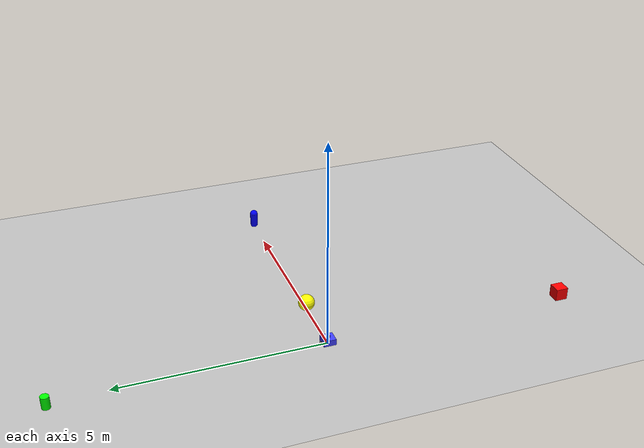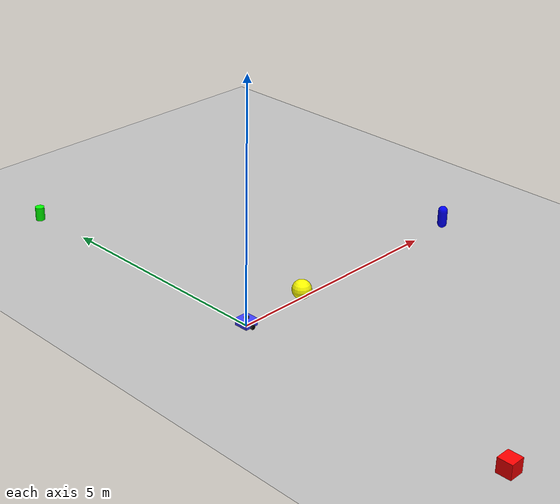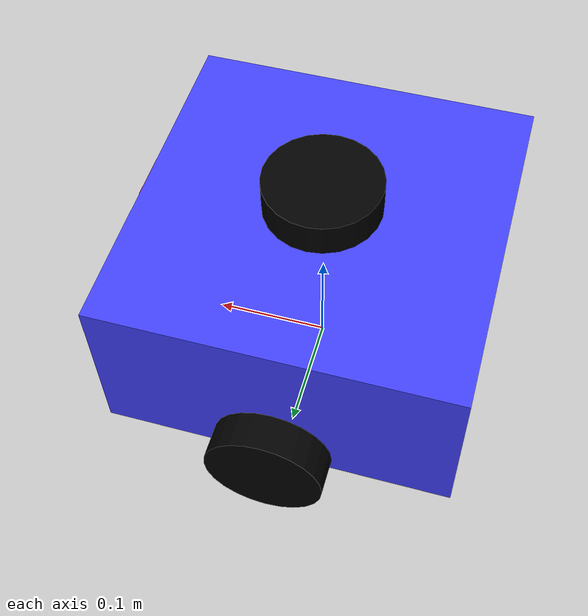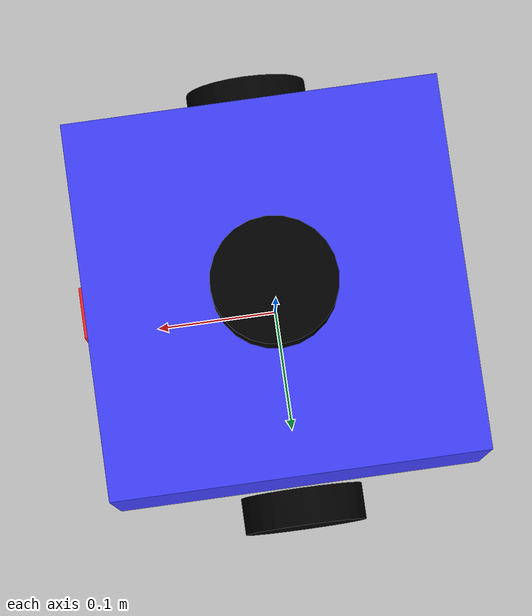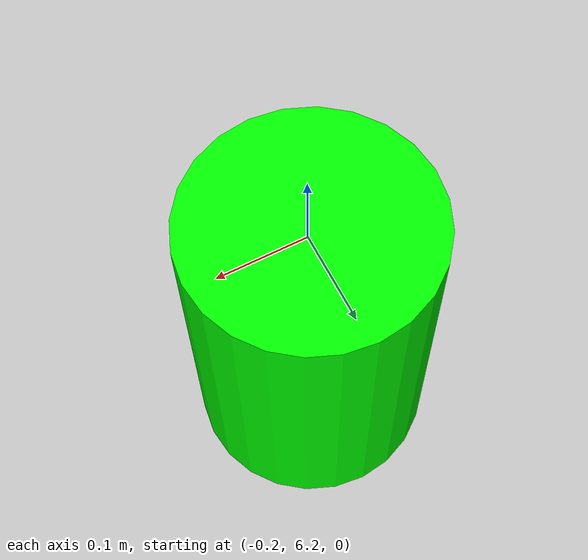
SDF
<sdf version='1.10'>
  <world name='colored_shapes'>
    <physics name='1ms' type='ignored'>
      <max_step_size>0.001</max_step_size>
      <real_time_factor>1</real_time_factor>
      <real_time_update_rate>1000</real_time_update_rate>
    </physics>
    <plugin name='gz::sim::systems::Physics' filename='gz-sim-physics-system'/>
    <plugin name='gz::sim::systems::UserCommands' filename='gz-sim-user-commands-system'/>
    <plugin name='gz::sim::systems::SceneBroadcaster' filename='gz-sim-scene-broadcaster-system'/>
    <gravity>0 0 -9.8000000000000007</gravity>
    <magnetic_field>5.5644999999999998e-06 2.2875799999999999e-05 -4.2388400000000002e-05</magnetic_field>
    <atmosphere type='adiabatic'/>
    <scene>
      <ambient>0.400000006 0.400000006 0.400000006 1</ambient>
      <background>0.699999988 0.699999988 0.699999988 1</background>
      <shadows>true</shadows>
    </scene>
    <model name='ground_plane'>
      <static>true</static>
      <link name='link'>
        <collision name='collision'>
          <geometry>
            <plane>
              <normal>0 0 1</normal>
              <size>100 100</size>
            </plane>
          </geometry>
          <surface>
            <friction>
              <ode/>
            </friction>
            <bounce/>
            <contact/>
          </surface>
        </collision>
        <visual name='visual'>
          <geometry>
            <plane>
              <normal>0 0 1</normal>
              <size>100 100</size>
            </plane>
          </geometry>
          <material>
            <ambient>0.75 0.75 0.75 1</ambient>
            <diffuse>0.75 0.75 0.75 1</diffuse>
          </material>
        </visual>
        <pose>0 0 0 0 0 0</pose>
        <inertial>
          <pose>0 0 0 0 0 0</pose>
          <mass>1</mass>
          <inertia>
            <ixx>1</ixx>
            <ixy>0</ixy>
            <ixz>0</ixz>
            <iyy>1</iyy>
            <iyz>0</iyz>
            <izz>1</izz>
          </inertia>
        </inertial>
        <enable_wind>false</enable_wind>
      </link>
      <pose>0 0 0 0 0 0</pose>
      <self_collide>false</self_collide>
    </model>
    <model name='target_box'>
      <pose>-0.094302400946617126 -5.9963607788085938 0.14999900272905953 5.4231532227531498e-20 8.6218849733862477e-20 -6.5828572647410327e-22</pose>
      <link name='link'>
        <collision name='collision'>
          <geometry>
            <box>
              <size>0.29999999999999999 0.29999999999999999 0.29999999999999999</size>
            </box>
          </geometry>
          <surface>
            <friction>
              <ode/>
            </friction>
            <bounce/>
            <contact/>
          </surface>
        </collision>
        <visual name='visual'>
          <geometry>
            <box>
              <size>0.29999999999999999 0.29999999999999999 0.29999999999999999</size>
            </box>
          </geometry>
          <material>
            <ambient>1 0 0 1</ambient>
            <diffuse>1 0 0 1</diffuse>
            <specular>0.200000003 0.200000003 0.200000003 1</specular>
          </material>
        </visual>
        <pose>0 0 0 0 0 0</pose>
        <inertial>
          <pose>0 0 0 0 0 0</pose>
          <mass>1</mass>
          <inertia>
            <ixx>1</ixx>
            <ixy>0</ixy>
            <ixz>0</ixz>
            <iyy>1</iyy>
            <iyz>0</iyz>
            <izz>1</izz>
          </inertia>
        </inertial>
        <enable_wind>false</enable_wind>
      </link>
      <static>false</static>
      <self_collide>false</self_collide>
    </model>
    <model name='decoy_sphere'>
      <pose>1.5 0 0.2 0 0 0</pose>
      <link name='link'>
        <collision name='collision'>
          <geometry>
            <sphere>
              <radius>0.20000000000000001</radius>
            </sphere>
          </geometry>
          <surface>
            <friction>
              <ode/>
            </friction>
            <bounce/>
            <contact/>
          </surface>
        </collision>
        <visual name='visual'>
          <geometry>
            <sphere>
              <radius>0.20000000000000001</radius>
            </sphere>
          </geometry>
          <material>
            <ambient>1 1 0 1</ambient>
            <diffuse>1 1 0 1</diffuse>
            <specular>0.200000003 0.200000003 0.200000003 1</specular>
          </material>
        </visual>
        <pose>0 0 0 0 0 0</pose>
        <inertial>
          <pose>0 0 0 0 0 0</pose>
          <mass>1</mass>
          <inertia>
            <ixx>1</ixx>
            <ixy>0</ixy>
            <ixz>0</ixz>
            <iyy>1</iyy>
            <iyz>0</iyz>
            <izz>1</izz>
          </inertia>
        </inertial>
        <enable_wind>false</enable_wind>
      </link>
      <static>false</static>
      <self_collide>false</self_collide>
    </model>
    <model name='decoy_capsule'>
      <pose>5.8956255912780762 0 0.24999999990200097 0 0 0</pose>
      <link name='link'>
        <collision name='collision'>
          <geometry>
            <capsule>
              <radius>0.10000000000000001</radius>
              <length>0.29999999999999999</length>
            </capsule>
          </geometry>
          <surface>
            <friction>
              <ode/>
            </friction>
            <bounce/>
            <contact/>
          </surface>
        </collision>
        <visual name='visual'>
          <geometry>
            <capsule>
              <radius>0.10000000000000001</radius>
              <length>0.29999999999999999</length>
            </capsule>
          </geometry>
          <material>
            <ambient>0 0 1 1</ambient>
            <diffuse>0 0 1 1</diffuse>
            <specular>0.200000003 0.200000003 0.200000003 1</specular>
          </material>
        </visual>
        <pose>0 0 0 0 0 0</pose>
        <inertial>
          <pose>0 0 0 0 0 0</pose>
          <mass>1</mass>
          <inertia>
            <ixx>1</ixx>
            <ixy>0</ixy>
            <ixz>0</ixz>
            <iyy>1</iyy>
            <iyz>0</iyz>
            <izz>1</izz>
          </inertia>
        </inertial>
        <enable_wind>false</enable_wind>
      </link>
      <static>false</static>
      <self_collide>false</self_collide>
    </model>
    <model name='decoy_cylinder'>
      <pose>-0.13213895261287689 6.3388900756835938 0.14999900274228203 -9.2246248639928911e-19 6.051308253543817e-19 -3.9319038046190713e-24</pose>
      <link name='link'>
        <collision name='collision'>
          <geometry>
            <cylinder>
              <radius>0.10000000000000001</radius>
              <length>0.29999999999999999</length>
            </cylinder>
          </geometry>
          <surface>
            <friction>
              <ode/>
            </friction>
            <bounce/>
            <contact/>
          </surface>
        </collision>
        <visual name='visual'>
          <geometry>
            <cylinder>
              <radius>0.10000000000000001</radius>
              <length>0.29999999999999999</length>
            </cylinder>
          </geometry>
          <material>
            <ambient>0 1 0 1</ambient>
            <diffuse>0 1 0 1</diffuse>
            <specular>0.200000003 0.200000003 0.200000003 1</specular>
          </material>
        </visual>
        <pose>0 0 0 0 0 0</pose>
        <inertial>
          <pose>0 0 0 0 0 0</pose>
          <mass>1</mass>
          <inertia>
            <ixx>1</ixx>
            <ixy>0</ixy>
            <ixz>0</ixz>
            <iyy>1</iyy>
            <iyz>0</iyz>
            <izz>1</izz>
          </inertia>
        </inertial>
        <enable_wind>false</enable_wind>
      </link>
      <static>false</static>
      <self_collide>false</self_collide>
    </model>
    <model name='2wheeled_robot'>
      <link name='base_footprint'>
        <inertial>
          <pose>2.203613926840055e-05 0 0.12652783898927569 0 0 0</pose>
          <mass>6.8070000000000013</mass>
          <inertia>
            <ixx>0.042246756307844843</ixx>
            <ixy>0</ixy>
            <ixz>-3.52082415160848e-06</ixz>
            <iyy>0.085406753002423952</iyy>
            <iyz>0</iyz>
            <izz>0.095900113361245751</izz>
          </inertia>
        </inertial>
        <collision name='base_footprint_fixed_joint_lump__base_link_collision'>
          <pose>0 0 0.10000000000000001 0 0 0</pose>
          <geometry>
            <box>
              <size>0.29999999999999999 0.29999999999999999 0.14999999999999999</size>
            </box>
          </geometry>
          <surface>
            <friction>
              <ode/>
            </friction>
            <bounce/>
            <contact/>
          </surface>
        </collision>
        <collision name='base_footprint_fixed_joint_lump__back_caster_wheel_link_collision_1'>
          <pose>-0.10000000000000001 0 0.050000000000000003 1.5700000000000001 0 0</pose>
          <geometry>
            <sphere>
              <radius>0.049500000000000002</radius>
            </sphere>
          </geometry>
          <surface>
            <contact>
              <ode>
                <kp>100000</kp>
                <kd>1000</kd>
                <max_vel>0.10000000000000001</max_vel>
                <min_depth>0.001</min_depth>
              </ode>
            </contact>
            <friction>
              <ode>
                <mu>0.01</mu>
                <mu2>0.01</mu2>
                <fdir1>1 0 0</fdir1>
              </ode>
            </friction>
            <bounce/>
          </surface>
        </collision>
        <collision name='base_footprint_fixed_joint_lump__camera_link_collision_2'>
          <pose>0.14999999999999999 0 0.14999999999999999 0 1.5707963267948966 0</pose>
          <geometry>
            <box>
              <size>0.040000000000000001 0.040000000000000001 0.0050000000000000001</size>
            </box>
          </geometry>
          <surface>
            <contact>
              <ode/>
            </contact>
            <friction>
              <ode/>
            </friction>
            <bounce/>
          </surface>
        </collision>
        <collision name='base_footprint_fixed_joint_lump__front_caster_wheel_link_collision_3'>
          <pose>0.10000000000000001 0 0.050000000000000003 1.5700000000000001 0 0</pose>
          <geometry>
            <sphere>
              <radius>0.049500000000000002</radius>
            </sphere>
          </geometry>
          <surface>
            <contact>
              <ode>
                <kp>100000</kp>
                <kd>1000</kd>
                <max_vel>0.10000000000000001</max_vel>
                <min_depth>0.001</min_depth>
              </ode>
            </contact>
            <friction>
              <ode>
                <mu>0.01</mu>
                <mu2>0.01</mu2>
                <fdir1>1 0 0</fdir1>
              </ode>
            </friction>
            <bounce/>
          </surface>
        </collision>
        <collision name='base_footprint_fixed_joint_lump__imu_link_collision_4'>
          <pose>0 0 0.14999999999999999 0 0 0</pose>
          <geometry>
            <box>
              <size>0.040000000000000001 0.040000000000000001 0.0050000000000000001</size>
            </box>
          </geometry>
          <surface>
            <contact>
              <ode/>
            </contact>
            <friction>
              <ode/>
            </friction>
            <bounce/>
          </surface>
        </collision>
        <collision name='base_footprint_fixed_joint_lump__laser_link_collision_5'>
          <pose>0 0 0.19500000000000001 0 0 0</pose>
          <geometry>
            <cylinder>
              <length>0.029999999999999999</length>
              <radius>0.050000000000000003</radius>
            </cylinder>
          </geometry>
          <surface>
            <contact>
              <ode/>
            </contact>
            <friction>
              <ode/>
            </friction>
            <bounce/>
          </surface>
        </collision>
        <visual name='base_footprint_fixed_joint_lump__base_link_visual'>
          <pose>0 0 0.10000000000000001 0 0 0</pose>
          <geometry>
            <box>
              <size>0.29999999999999999 0.29999999999999999 0.14999999999999999</size>
            </box>
          </geometry>
          <material>
            <diffuse>0.25 0.25 1 1</diffuse>
            <ambient>0.25 0.25 1 1</ambient>
          </material>
        </visual>
        <visual name='base_footprint_fixed_joint_lump__back_caster_wheel_link_visual_1'>
          <pose>-0.10000000000000001 0 0.050000000000000003 1.5700000000000001 0 0</pose>
          <geometry>
            <sphere>
              <radius>0.049500000000000002</radius>
            </sphere>
          </geometry>
          <material>
            <diffuse>0 0 0 1</diffuse>
            <ambient>0 0 0 1</ambient>
          </material>
        </visual>
        <visual name='base_footprint_fixed_joint_lump__camera_link_visual_2'>
          <pose>0.14999999999999999 0 0.14999999999999999 0 1.5707963267948966 0</pose>
          <geometry>
            <box>
              <size>0.040000000000000001 0.040000000000000001 0.0050000000000000001</size>
            </box>
          </geometry>
          <material>
            <diffuse>1 0.125 0.125 1</diffuse>
            <ambient>1 0.125 0.125 1</ambient>
          </material>
        </visual>
        <visual name='base_footprint_fixed_joint_lump__front_caster_wheel_link_visual_3'>
          <pose>0.10000000000000001 0 0.050000000000000003 1.5700000000000001 0 0</pose>
          <geometry>
            <sphere>
              <radius>0.049500000000000002</radius>
            </sphere>
          </geometry>
          <material>
            <diffuse>0 0 0 1</diffuse>
            <ambient>0 0 0 1</ambient>
          </material>
        </visual>
        <visual name='base_footprint_fixed_joint_lump__imu_link_visual_4'>
          <pose>0 0 0.14999999999999999 0 0 0</pose>
          <geometry>
            <box>
              <size>0.040000000000000001 0.040000000000000001 0.0050000000000000001</size>
            </box>
          </geometry>
          <material>
            <diffuse>1 0.125 0.125 1</diffuse>
            <ambient>1 0.125 0.125 1</ambient>
          </material>
        </visual>
        <visual name='base_footprint_fixed_joint_lump__laser_link_visual_5'>
          <pose>0 0 0.19500000000000001 0 0 0</pose>
          <geometry>
            <cylinder>
              <length>0.029999999999999999</length>
              <radius>0.050000000000000003</radius>
            </cylinder>
          </geometry>
          <material>
            <diffuse>0 0 0 1</diffuse>
            <ambient>0 0 0 1</ambient>
          </material>
        </visual>
        <sensor name='rgb_camera' type='camera'>
          <pose>0.14999999999999999 0 0.14999999999999999 0 0 0</pose>
          <topic>camera/image_raw</topic>
          <update_rate>15</update_rate>
          <enable_metrics>false</enable_metrics>
          <camera name='__default__'>
            <pose>0 0 0 0 0 0</pose>
            <horizontal_fov>1.089</horizontal_fov>
            <image>
              <width>640</width>
              <height>480</height>
              <format>RGB_INT8</format>
              <anti_aliasing>4</anti_aliasing>
            </image>
            <camera_info_topic>__default__</camera_info_topic>
            <trigger_topic></trigger_topic>
            <triggered>false</triggered>
            <clip>
              <near>0.050000000000000003</near>
              <far>20</far>
            </clip>
            <save enabled='false'>
              <path>__default__</path>
            </save>
            <visibility_mask>4294967295</visibility_mask>
            <noise>
              <type>none</type>
              <mean>0</mean>
              <stddev>0</stddev>
            </noise>
            <distortion>
              <k1>0</k1>
              <k2>0</k2>
              <k3>0</k3>
              <p1>0</p1>
              <p2>0</p2>
              <center>0.5 0.5</center>
            </distortion>
            <lens>
              <type>stereographic</type>
              <scale_to_hfov>true</scale_to_hfov>
              <cutoff_angle>1.5707963267948966</cutoff_angle>
              <env_texture_size>256</env_texture_size>
            </lens>
            <optical_frame_id></optical_frame_id>
          </camera>
        </sensor>
        <sensor name='imu' type='imu'>
          <pose>0 0 0.14999999999999999 0 0 0</pose>
          <topic>imu</topic>
          <update_rate>100</update_rate>
          <enable_metrics>false</enable_metrics>
          <imu>
            <orientation_reference_frame>
              <localization>CUSTOM</localization>
              <custom_rpy>0 0 0</custom_rpy>
              <grav_dir_x>1 0 0</grav_dir_x>
            </orientation_reference_frame>
            <angular_velocity>
              <x>
                <noise type='gaussian'>
                  <mean>0</mean>
                  <stddev>0.00020000000000000001</stddev>
                  <bias_mean>0</bias_mean>
                  <bias_stddev>0</bias_stddev>
                  <dynamic_bias_stddev>0</dynamic_bias_stddev>
                  <dynamic_bias_correlation_time>0</dynamic_bias_correlation_time>
                  <precision>0</precision>
                </noise>
              </x>
              <y>
                <noise type='gaussian'>
                  <mean>0</mean>
                  <stddev>0.00020000000000000001</stddev>
                  <bias_mean>0</bias_mean>
                  <bias_stddev>0</bias_stddev>
                  <dynamic_bias_stddev>0</dynamic_bias_stddev>
                  <dynamic_bias_correlation_time>0</dynamic_bias_correlation_time>
                  <precision>0</precision>
                </noise>
              </y>
              <z>
                <noise type='gaussian'>
                  <mean>0</mean>
                  <stddev>0.00020000000000000001</stddev>
                  <bias_mean>0</bias_mean>
                  <bias_stddev>0</bias_stddev>
                  <dynamic_bias_stddev>0</dynamic_bias_stddev>
                  <dynamic_bias_correlation_time>0</dynamic_bias_correlation_time>
                  <precision>0</precision>
                </noise>
              </z>
            </angular_velocity>
            <linear_acceleration>
              <x>
                <noise type='gaussian'>
                  <mean>0</mean>
                  <stddev>0.017000000000000001</stddev>
                  <bias_mean>0</bias_mean>
                  <bias_stddev>0</bias_stddev>
                  <dynamic_bias_stddev>0</dynamic_bias_stddev>
                  <dynamic_bias_correlation_time>0</dynamic_bias_correlation_time>
                  <precision>0</precision>
                </noise>
              </x>
              <y>
                <noise type='gaussian'>
                  <mean>0</mean>
                  <stddev>0.017000000000000001</stddev>
                  <bias_mean>0</bias_mean>
                  <bias_stddev>0</bias_stddev>
                  <dynamic_bias_stddev>0</dynamic_bias_stddev>
                  <dynamic_bias_correlation_time>0</dynamic_bias_correlation_time>
                  <precision>0</precision>
                </noise>
              </y>
              <z>
                <noise type='gaussian'>
                  <mean>0</mean>
                  <stddev>0.017000000000000001</stddev>
                  <bias_mean>0</bias_mean>
                  <bias_stddev>0</bias_stddev>
                  <dynamic_bias_stddev>0</dynamic_bias_stddev>
                  <dynamic_bias_correlation_time>0</dynamic_bias_correlation_time>
                  <precision>0</precision>
                </noise>
              </z>
            </linear_acceleration>
            <enable_orientation>true</enable_orientation>
          </imu>
        </sensor>
        <sensor name='lidar' type='gpu_lidar'>
          <pose>0 0 0.19500000000000001 0 0 0</pose>
          <topic>scan</topic>
          <update_rate>5</update_rate>
          <enable_metrics>false</enable_metrics>
          <lidar>
            <scan>
              <horizontal>
                <samples>360</samples>
                <resolution>1</resolution>
                <min_angle>0</min_angle>
                <max_angle>6.2831853070000001</max_angle>
              </horizontal>
              <vertical>
                <samples>1</samples>
                <min_angle>0</min_angle>
                <max_angle>0</max_angle>
                <resolution>1</resolution>
              </vertical>
            </scan>
            <range>
              <min>0.12</min>
              <max>12</max>
              <resolution>0.02</resolution>
            </range>
            <noise>
              <type>gaussian</type>
              <mean>0</mean>
              <stddev>0.01</stddev>
            </noise>
            <visibility_mask>4294967295</visibility_mask>
          </lidar>
        </sensor>
        <slip1>1.0</slip1>
        <slip2>1.0</slip2>
        <slip1>1.0</slip1>
        <slip2>1.0</slip2>
        <pose>0 0 0 0 0 0</pose>
        <enable_wind>false</enable_wind>
      </link>
      <joint name='left_wheel_joint' type='revolute'>
        <pose>0 0 0 0 0 0</pose>
        <parent>base_footprint</parent>
        <child>left_wheel_link</child>
        <axis>
          <xyz>0 1 0</xyz>
          <limit>
            <lower>-inf</lower>
            <upper>inf</upper>
            <effort>inf</effort>
            <velocity>inf</velocity>
            <stiffness>100000000</stiffness>
            <dissipation>1</dissipation>
          </limit>
          <dynamics>
            <spring_reference>0</spring_reference>
            <spring_stiffness>0</spring_stiffness>
            <damping>0.59999999999999998</damping>
            <friction>0.20000000000000001</friction>
          </dynamics>
        </axis>
      </joint>
      <link name='left_wheel_link'>
        <pose>-4.8045958699530059e-20 0.17000000000000004 0.050000000000000003 5.9809152569774045e-35 3.319948482793933e-13 -3.8518598887743725e-34</pose>
        <inertial>
          <pose>0 0 0 0 0 0</pose>
          <mass>0.5</mass>
          <inertia>
            <ixx>0.00032916666666666668</ixx>
            <ixy>0</ixy>
            <ixz>0</ixz>
            <iyy>0.00032916666666666668</iyy>
            <iyz>0</iyz>
            <izz>0.00062500000000000012</izz>
          </inertia>
        </inertial>
        <collision name='left_wheel_link_collision'>
          <pose>0 0 0 1.5700000000000001 0 0</pose>
          <geometry>
            <sphere>
              <radius>0.050000000000000003</radius>
            </sphere>
          </geometry>
          <surface>
            <contact>
              <ode>
                <kp>1000000</kp>
                <kd>100</kd>
                <max_vel>0.5</max_vel>
                <min_depth>0.0030000000000000001</min_depth>
              </ode>
            </contact>
            <friction>
              <ode>
                <mu>1000000000000000</mu>
                <mu2>1000000000000000</mu2>
                <fdir1>1 0 0</fdir1>
              </ode>
            </friction>
            <bounce/>
          </surface>
        </collision>
        <visual name='left_wheel_link_visual'>
          <pose>0 0 0 1.5700000000000001 0 0</pose>
          <geometry>
            <cylinder>
              <length>0.029999999999999999</length>
              <radius>0.050000000000000003</radius>
            </cylinder>
          </geometry>
          <material>
            <diffuse>0 0 0 1</diffuse>
            <ambient>0 0 0 1</ambient>
          </material>
        </visual>
        <slip1>0.005</slip1>
        <slip2>0.005</slip2>
        <enable_wind>false</enable_wind>
      </link>
      <joint name='right_wheel_joint' type='revolute'>
        <pose>0 0 0 0 0 0</pose>
        <parent>base_footprint</parent>
        <child>right_wheel_link</child>
        <axis>
          <xyz>0 1 0</xyz>
          <limit>
            <lower>-inf</lower>
            <upper>inf</upper>
            <effort>inf</effort>
            <velocity>inf</velocity>
            <stiffness>100000000</stiffness>
            <dissipation>1</dissipation>
          </limit>
          <dynamics>
            <spring_reference>0</spring_reference>
            <spring_stiffness>0</spring_stiffness>
            <damping>0.59999999999999998</damping>
            <friction>0.20000000000000001</friction>
          </dynamics>
        </axis>
      </joint>
      <link name='right_wheel_link'>
        <pose>-2.9359948661957164e-20 -0.17000000000000004 0.050000000000000003 5.9809152569774045e-35 3.319948482793933e-13 -3.8518598887743725e-34</pose>
        <inertial>
          <pose>0 0 0 0 0 0</pose>
          <mass>0.5</mass>
          <inertia>
            <ixx>0.00032916666666666668</ixx>
            <ixy>0</ixy>
            <ixz>0</ixz>
            <iyy>0.00032916666666666668</iyy>
            <iyz>0</iyz>
            <izz>0.00062500000000000012</izz>
          </inertia>
        </inertial>
        <collision name='right_wheel_link_collision'>
          <pose>0 0 0 1.5700000000000001 0 0</pose>
          <geometry>
            <sphere>
              <radius>0.050000000000000003</radius>
            </sphere>
          </geometry>
          <surface>
            <contact>
              <ode>
                <kp>1000000</kp>
                <kd>100</kd>
                <max_vel>0.5</max_vel>
                <min_depth>0.0030000000000000001</min_depth>
              </ode>
            </contact>
            <friction>
              <ode>
                <mu>1000000000000000</mu>
                <mu2>1000000000000000</mu2>
                <fdir1>1 0 0</fdir1>
              </ode>
            </friction>
            <bounce/>
          </surface>
        </collision>
        <visual name='right_wheel_link_visual'>
          <pose>0 0 0 1.5700000000000001 0 0</pose>
          <geometry>
            <cylinder>
              <length>0.029999999999999999</length>
              <radius>0.050000000000000003</radius>
            </cylinder>
          </geometry>
          <material>
            <diffuse>0 0 0 1</diffuse>
            <ambient>0 0 0 1</ambient>
          </material>
        </visual>
        <slip1>0.005</slip1>
        <slip2>0.005</slip2>
        <enable_wind>false</enable_wind>
      </link>
      <plugin name='gz_ros2_control::GazeboSimROS2ControlPlugin' filename='gz_ros2_control-system'>
        <parameters>/home/ishaan22/object-follower-ws/object-follower-ros2-main/object_follower_ws/install/robot_controller/share/robot_controller/config/robot_controllers.yaml</parameters>
      </plugin>
      <plugin name='gz::sim::systems::Imu' filename='gz-sim-imu-system'/>
      <plugin name='gz::sim::systems::Sensors' filename='gz-sim-sensors-system'>
        <render_engine>ogre2</render_engine>
      </plugin>
      <frame name='back_caster_wheel_joint' attached_to='base_link'>
        <pose>-0.10000000000000001 0 0 0 0 0</pose>
      </frame>
      <frame name='back_caster_wheel_link' attached_to='back_caster_wheel_joint'>
        <pose>0 0 0 0 0 0</pose>
      </frame>
      <frame name='camera_optical_joint' attached_to='camera_link'>
        <pose>0 0 0 -1.5707963267948959 -5.5511151231257827e-17 -1.5707963267948959</pose>
      </frame>
      <frame name='camera_link_optical' attached_to='camera_optical_joint'>
        <pose>0 0 0 0 0 0</pose>
      </frame>
      <frame name='camera_joint' attached_to='base_link'>
        <pose>0.14999999999999999 0 0.10000000000000001 0 0 0</pose>
      </frame>
      <frame name='camera_link' attached_to='camera_joint'>
        <pose>0 0 0 0 0 0</pose>
      </frame>
      <frame name='front_caster_wheel_joint' attached_to='base_link'>
        <pose>0.10000000000000001 0 0 0 0 0</pose>
      </frame>
      <frame name='front_caster_wheel_link' attached_to='front_caster_wheel_joint'>
        <pose>0 0 0 0 0 0</pose>
      </frame>
      <frame name='imu_joint' attached_to='base_link'>
        <pose>0 0 0.10000000000000001 0 0 0</pose>
      </frame>
      <frame name='imu_link' attached_to='imu_joint'>
        <pose>0 0 0 0 0 0</pose>
      </frame>
      <frame name='laser_joint' attached_to='base_link'>
        <pose>0 0 0.14499999999999999 0 0 0</pose>
      </frame>
      <frame name='laser_link' attached_to='laser_joint'>
        <pose>0 0 0 0 0 0</pose>
      </frame>
      <frame name='base_joint' attached_to='base_footprint'>
        <pose>0 0 0.050000000000000003 0 0 0</pose>
      </frame>
      <frame name='base_link' attached_to='base_joint'>
        <pose>0 0 0 0 0 0</pose>
      </frame>
      <pose>9.3744226505270245e-10 -7.367628844724695e-19 6.0595939187026216e-07 -2.9963732981137727e-19 0.0050008191294659918 1.1648733490791203e-18</pose>
      <static>false</static>
      <self_collide>false</self_collide>
    </model>
    <light name='sun' type='directional'>
      <pose>0 0 10 0 0 0</pose>
      <cast_shadows>true</cast_shadows>
      <intensity>1</intensity>
      <direction>-0.5 0.10000000000000001 -0.90000000000000002</direction>
      <diffuse>0.800000012 0.800000012 0.800000012 1</diffuse>
      <specular>0.200000003 0.200000003 0.200000003 1</specular>
      <attenuation>
        <range>10</range>
        <linear>1</linear>
        <constant>1</constant>
        <quadratic>0</quadratic>
      </attenuation>
      <spot>
        <inner_angle>0</inner_angle>
        <outer_angle>0</outer_angle>
        <falloff>0</falloff>
      </spot>
    </light>
  </world>
</sdf>
